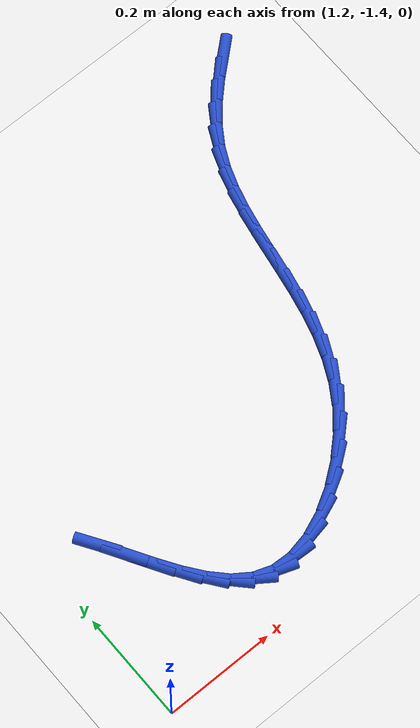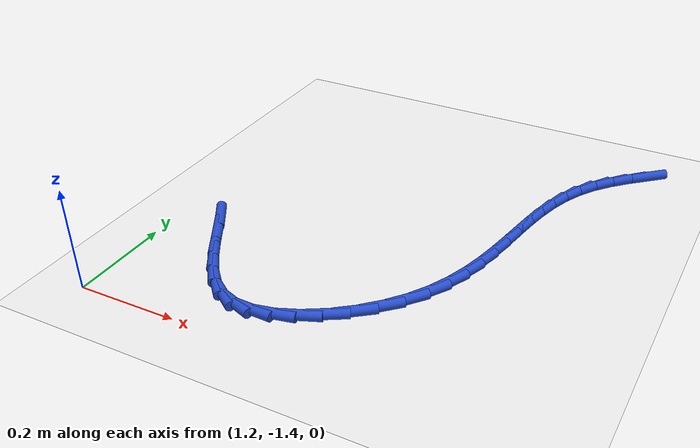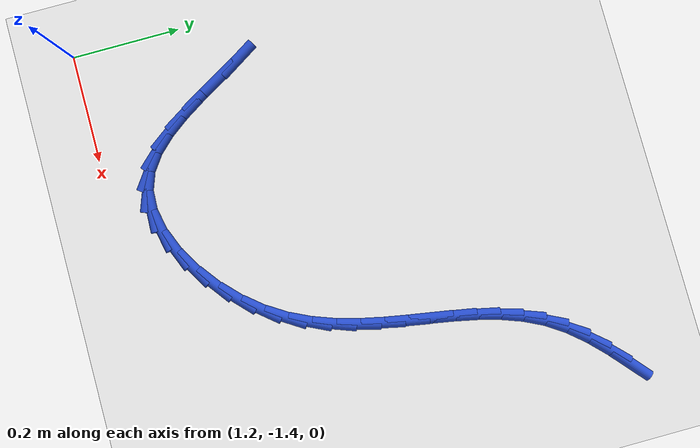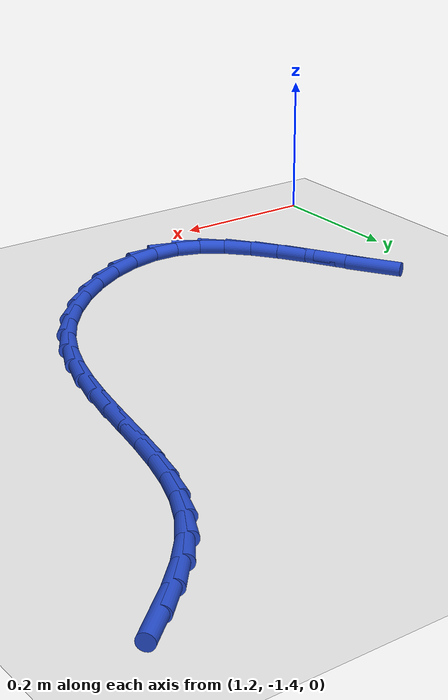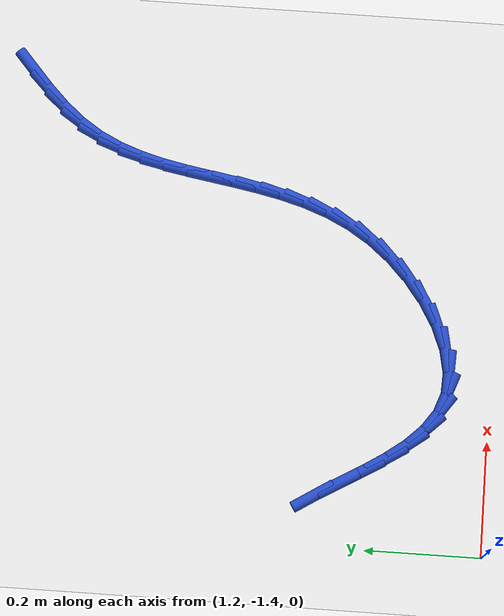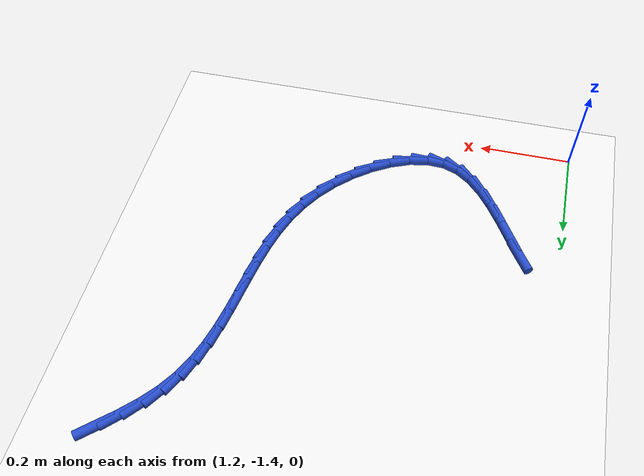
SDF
<sdf version="1.6">
 <world name="default">
  <model name="ground_plane">
   <static>1</static>
   <link name="link">
    <collision name="collision">
     <geometry><plane><normal>0 0 1</normal><size>100 100</size></plane></geometry>
     <surface><friction><ode><mu>100</mu><mu2>50</mu2></ode></friction></surface>
    </collision>
    <visual name="visual">
     <cast_shadows>0</cast_shadows>
     <geometry><plane><normal>0 0 1</normal><size>100 100</size></plane></geometry>
     <material>
      <script><uri>file://media/materials/scripts/gazebo.material</uri><name>Gazebo/WhiteGlow</name></script>
     </material>
    </visual>
   </link>
  </model>
  <model name="line">
   <link name="link_105">
    <pose>2.0023928075887056 -0.5707528001564135 0.01 0 1.57 0.7192359962438325</pose>
    <collision name="collision">
     <geometry><cylinder><radius>0.01</radius><length>0.08</length></cylinder></geometry>
    </collision>
    <visual name="visual">
     <material>
      <script><name>Gazebo/Blue</name><uri>file://media/materials/scripts/gazebo.material</uri></script>
     </material>
     <geometry><cylinder><radius>0.01</radius><length>0.08</length></cylinder></geometry>
    </visual>
   </link>
   <link name="link_106">
    <pose>1.9692844365676598 -0.5997463665667092 0.01 0 1.57 0.7795648812347312</pose>
    <collision name="collision">
     <geometry><cylinder><radius>0.01</radius><length>0.08</length></cylinder></geometry>
    </collision>
    <visual name="visual">
     <material>
      <script><name>Gazebo/Blue</name><uri>file://media/materials/scripts/gazebo.material</uri></script>
     </material>
     <geometry><cylinder><radius>0.01</radius><length>0.08</length></cylinder></geometry>
    </visual>
   </link>
   <link name="link_107">
    <pose>1.9386592362923754 -0.6300163440586429 0.01 0 1.57 0.8679116865161581</pose>
    <collision name="collision">
     <geometry><cylinder><radius>0.01</radius><length>0.08</length></cylinder></geometry>
    </collision>
    <visual name="visual">
     <material>
      <script><name>Gazebo/Blue</name><uri>file://media/materials/scripts/gazebo.material</uri></script>
     </material>
     <geometry><cylinder><radius>0.01</radius><length>0.08</length></cylinder></geometry>
    </visual>
   </link>
   <link name="link_108">
    <pose>1.9115830269978409 -0.6619747965354008 0.01 0 1.57 0.9872611412638304</pose>
    <collision name="collision">
     <geometry><cylinder><radius>0.01</radius><length>0.08</length></cylinder></geometry>
    </collision>
    <visual name="visual">
     <material>
      <script><name>Gazebo/Blue</name><uri>file://media/materials/scripts/gazebo.material</uri></script>
     </material>
     <geometry><cylinder><radius>0.01</radius><length>0.08</length></cylinder></geometry>
    </visual>
   </link>
   <link name="link_109">
    <pose>1.8891012344642248 -0.6960261052319496 0.01 0 1.57 1.1173815300725902</pose>
    <collision name="collision">
     <geometry><cylinder><radius>0.01</radius><length>0.08</length></cylinder></geometry>
    </collision>
    <visual name="visual">
     <material>
      <script><name>Gazebo/Blue</name><uri>file://media/materials/scripts/gazebo.material</uri></script>
     </material>
     <geometry><cylinder><radius>0.01</radius><length>0.08</length></cylinder></geometry>
    </visual>
   </link>
   <link name="link_110">
    <pose>1.8714420927784738 -0.7322668121834918 0.01 0 1.57 1.2261597939343825</pose>
    <collision name="collision">
     <geometry><cylinder><radius>0.01</radius><length>0.08</length></cylinder></geometry>
    </collision>
    <visual name="visual">
     <material>
      <script><name>Gazebo/Blue</name><uri>file://media/materials/scripts/gazebo.material</uri></script>
     </material>
     <geometry><cylinder><radius>0.01</radius><length>0.08</length></cylinder></geometry>
    </visual>
   </link>
   <link name="link_111">
    <pose>1.8577579650983627 -0.7703881747794997 0.01 0 1.57 1.308956149062568</pose>
    <collision name="collision">
     <geometry><cylinder><radius>0.01</radius><length>0.08</length></cylinder></geometry>
    </collision>
    <visual name="visual">
     <material>
      <script><name>Gazebo/Blue</name><uri>file://media/materials/scripts/gazebo.material</uri></script>
     </material>
     <geometry><cylinder><radius>0.01</radius><length>0.08</length></cylinder></geometry>
    </visual>
   </link>
   <link name="link_112">
    <pose>1.8471278545796388 -0.8100538154193856 0.01 0 1.57 1.3658284527395297</pose>
    <collision name="collision">
     <geometry><cylinder><radius>0.01</radius><length>0.08</length></cylinder></geometry>
    </collision>
    <visual name="visual">
     <material>
      <script><name>Gazebo/Blue</name><uri>file://media/materials/scripts/gazebo.material</uri></script>
     </material>
     <geometry><cylinder><radius>0.01</radius><length>0.08</length></cylinder></geometry>
    </visual>
   </link>
   <link name="link_113">
    <pose>1.8386307643780515 -0.8509273565025615 0.01 0 1.57 1.3980229867057052</pose>
    <collision name="collision">
     <geometry><cylinder><radius>0.01</radius><length>0.08</length></cylinder></geometry>
    </collision>
    <visual name="visual">
     <material>
      <script><name>Gazebo/Blue</name><uri>file://media/materials/scripts/gazebo.material</uri></script>
     </material>
     <geometry><cylinder><radius>0.01</radius><length>0.08</length></cylinder></geometry>
    </visual>
   </link>
   <link name="link_114">
    <pose>1.8313456976493463 -0.8926724204284395 0.01 0 1.57 1.4068597642938654</pose>
    <collision name="collision">
     <geometry><cylinder><radius>0.01</radius><length>0.08</length></cylinder></geometry>
    </collision>
    <visual name="visual">
     <material>
      <script><name>Gazebo/Blue</name><uri>file://media/materials/scripts/gazebo.material</uri></script>
     </material>
     <geometry><cylinder><radius>0.01</radius><length>0.08</length></cylinder></geometry>
    </visual>
   </link>
   <link name="link_115">
    <pose>1.8243516575492722 -0.9349526295964332 0.01 0 1.57 1.3932097705591142</pose>
    <collision name="collision">
     <geometry><cylinder><radius>0.01</radius><length>0.08</length></cylinder></geometry>
    </collision>
    <visual name="visual">
     <material>
      <script><name>Gazebo/Blue</name><uri>file://media/materials/scripts/gazebo.material</uri></script>
     </material>
     <geometry><cylinder><radius>0.01</radius><length>0.08</length></cylinder></geometry>
    </visual>
   </link>
   <link name="link_116">
    <pose>1.816727647233577 -0.9774316064059525 0.01 0 1.57 1.3574047977836279</pose>
    <collision name="collision">
     <geometry><cylinder><radius>0.01</radius><length>0.08</length></cylinder></geometry>
    </collision>
    <visual name="visual">
     <material>
      <script><name>Gazebo/Blue</name><uri>file://media/materials/scripts/gazebo.material</uri></script>
     </material>
     <geometry><cylinder><radius>0.01</radius><length>0.08</length></cylinder></geometry>
    </visual>
   </link>
   <link name="link_117">
    <pose>1.8075526698580078 -1.019772973256411 0.01 0 1.57 1.2994700375188377</pose>
    <collision name="collision">
     <geometry><cylinder><radius>0.01</radius><length>0.08</length></cylinder></geometry>
    </collision>
    <visual name="visual">
     <material>
      <script><name>Gazebo/Blue</name><uri>file://media/materials/scripts/gazebo.material</uri></script>
     </material>
     <geometry><cylinder><radius>0.01</radius><length>0.08</length></cylinder></geometry>
    </visual>
   </link>
   <link name="link_118">
    <pose>1.7959057285783124 -1.0616403525472202 0.01 0 1.57 1.2196593700183864</pose>
    <collision name="collision">
     <geometry><cylinder><radius>0.01</radius><length>0.08</length></cylinder></geometry>
    </collision>
    <visual name="visual">
     <material>
      <script><name>Gazebo/Blue</name><uri>file://media/materials/scripts/gazebo.material</uri></script>
     </material>
     <geometry><cylinder><radius>0.01</radius><length>0.08</length></cylinder></geometry>
    </visual>
   </link>
   <link name="link_119">
    <pose>1.7808658265502388 -1.1026973666777928 0.01 0 1.57 1.1192737537658413</pose>
    <collision name="collision">
     <geometry><cylinder><radius>0.01</radius><length>0.08</length></cylinder></geometry>
    </collision>
    <visual name="visual">
     <material>
      <script><name>Gazebo/Blue</name><uri>file://media/materials/scripts/gazebo.material</uri></script>
     </material>
     <geometry><cylinder><radius>0.01</radius><length>0.08</length></cylinder></geometry>
    </visual>
   </link>
   <link name="link_120">
    <pose>1.761511966929534 -1.1426076380475416 0.01 0 1.57 1.0015682662711107</pose>
    <collision name="collision">
     <geometry><cylinder><radius>0.01</radius><length>0.08</length></cylinder></geometry>
    </collision>
    <visual name="visual">
     <material>
      <script><name>Gazebo/Blue</name><uri>file://media/materials/scripts/gazebo.material</uri></script>
     </material>
     <geometry><cylinder><radius>0.01</radius><length>0.08</length></cylinder></geometry>
    </visual>
   </link>
   <link name="link_121">
    <pose>1.7369232182193572 -1.1810347626041995 0.01 0 1.57 0.8770675062409617</pose>
    <collision name="collision">
     <geometry><cylinder><radius>0.01</radius><length>0.08</length></cylinder></geometry>
    </collision>
    <visual name="visual">
     <material>
      <script><name>Gazebo/Blue</name><uri>file://media/materials/scripts/gazebo.material</uri></script>
     </material>
     <geometry><cylinder><radius>0.01</radius><length>0.08</length></cylinder></geometry>
    </visual>
   </link>
   <link name="link_122">
    <pose>1.7066321228896284 -1.2174587766541713 0.01 0 1.57 0.7612847077648415</pose>
    <collision name="collision">
     <geometry><cylinder><radius>0.01</radius><length>0.08</length></cylinder></geometry>
    </collision>
    <visual name="visual">
     <material>
      <script><name>Gazebo/Blue</name><uri>file://media/materials/scripts/gazebo.material</uri></script>
     </material>
     <geometry><cylinder><radius>0.01</radius><length>0.08</length></cylinder></geometry>
    </visual>
   </link>
   <link name="link_123">
    <pose>1.6717085682344797 -1.250737421763222 0.01 0 1.57 0.6474937239027815</pose>
    <collision name="collision">
     <geometry><cylinder><radius>0.01</radius><length>0.08</length></cylinder></geometry>
    </collision>
    <visual name="visual">
     <material>
      <script><name>Gazebo/Blue</name><uri>file://media/materials/scripts/gazebo.material</uri></script>
     </material>
     <geometry><cylinder><radius>0.01</radius><length>0.08</length></cylinder></geometry>
    </visual>
   </link>
   <link name="link_124">
    <pose>1.633547912527804 -1.2795966935961653 0.01 0 1.57 0.5249195380762282</pose>
    <collision name="collision">
     <geometry><cylinder><radius>0.01</radius><length>0.08</length></cylinder></geometry>
    </collision>
    <visual name="visual">
     <material>
      <script><name>Gazebo/Blue</name><uri>file://media/materials/scripts/gazebo.material</uri></script>
     </material>
     <geometry><cylinder><radius>0.01</radius><length>0.08</length></cylinder></geometry>
    </visual>
   </link>
   <link name="link_125">
    <pose>1.5935455140434962 -1.3027625878178157 0.01 0 1.57 0.38091123141777616</pose>
    <collision name="collision">
     <geometry><cylinder><radius>0.01</radius><length>0.08</length></cylinder></geometry>
    </collision>
    <visual name="visual">
     <material>
      <script><name>Gazebo/Blue</name><uri>file://media/materials/scripts/gazebo.material</uri></script>
     </material>
     <geometry><cylinder><radius>0.01</radius><length>0.08</length></cylinder></geometry>
    </visual>
   </link>
   <link name="link_126">
    <pose>1.5530967310554489 -1.3189611000929884 0.01 0 1.57 0.19878671087917416</pose>
    <collision name="collision">
     <geometry><cylinder><radius>0.01</radius><length>0.08</length></cylinder></geometry>
    </collision>
    <visual name="visual">
     <material>
      <script><name>Gazebo/Blue</name><uri>file://media/materials/scripts/gazebo.material</uri></script>
     </material>
     <geometry><cylinder><radius>0.01</radius><length>0.08</length></cylinder></geometry>
    </visual>
   </link>
   <link name="link_127">
    <pose>1.5135969218375573 -1.326918226086497 0.01 0 1.57 -0.041914466008053555</pose>
    <collision name="collision">
     <geometry><cylinder><radius>0.01</radius><length>0.08</length></cylinder></geometry>
    </collision>
    <visual name="visual">
     <material>
      <script><name>Gazebo/Blue</name><uri>file://media/materials/scripts/gazebo.material</uri></script>
     </material>
     <geometry><cylinder><radius>0.01</radius><length>0.08</length></cylinder></geometry>
    </visual>
   </link>
   <link name="link_128">
    <pose>1.4764414446637153 -1.325359961463156 0.01 0 1.57 -0.342874046964436</pose>
    <collision name="collision">
     <geometry><cylinder><radius>0.01</radius><length>0.08</length></cylinder></geometry>
    </collision>
    <visual name="visual">
     <material>
      <script><name>Gazebo/Blue</name><uri>file://media/materials/scripts/gazebo.material</uri></script>
     </material>
     <geometry><cylinder><radius>0.01</radius><length>0.08</length></cylinder></geometry>
    </visual>
   </link>
   <link name="link_129">
    <pose>1.442797215338717 -1.3133498512672759 0.01 0 1.57 -0.6141554056616323</pose>
    <collision name="collision">
     <geometry><cylinder><radius>0.01</radius><length>0.08</length></cylinder></geometry>
    </collision>
    <visual name="visual">
     <material>
      <script><name>Gazebo/Blue</name><uri>file://media/materials/scripts/gazebo.material</uri></script>
     </material>
     <geometry><cylinder><radius>0.01</radius><length>0.08</length></cylinder></geometry>
    </visual>
   </link>
   <link name="link_130">
    <pose>1.4124687322982101 -1.2919645650702571 0.01 0 1.57 -0.8070956462784024</pose>
    <collision name="collision">
     <geometry><cylinder><radius>0.01</radius><length>0.08</length></cylinder></geometry>
    </collision>
    <visual name="visual">
     <material>
      <script><name>Gazebo/Blue</name><uri>file://media/materials/scripts/gazebo.material</uri></script>
     </material>
     <geometry><cylinder><radius>0.01</radius><length>0.08</length></cylinder></geometry>
    </visual>
   </link>
   <link name="link_131">
    <pose>1.3847575259361153 -1.2630239641585062 0.01 0 1.57 -0.9312373732680492</pose>
    <collision name="collision">
     <geometry><cylinder><radius>0.01</radius><length>0.08</length></cylinder></geometry>
    </collision>
    <visual name="visual">
     <material>
      <script><name>Gazebo/Blue</name><uri>file://media/materials/scripts/gazebo.material</uri></script>
     </material>
     <geometry><cylinder><radius>0.01</radius><length>0.08</length></cylinder></geometry>
    </visual>
   </link>
   <link name="link_132">
    <pose>1.3589643268994018 -1.2283490915342932 0.01 0 1.57 -1.0037278542238008</pose>
    <collision name="collision">
     <geometry><cylinder><radius>0.01</radius><length>0.08</length></cylinder></geometry>
    </collision>
    <visual name="visual">
     <material>
      <script><name>Gazebo/Blue</name><uri>file://media/materials/scripts/gazebo.material</uri></script>
     </material>
     <geometry><cylinder><radius>0.01</radius><length>0.08</length></cylinder></geometry>
    </visual>
   </link>
   <link name="link_133">
    <pose>1.3343898658350362 -1.1897609901998856 0.01 0 1.57 -1.0367849903981399</pose>
    <collision name="collision">
     <geometry><cylinder><radius>0.01</radius><length>0.08</length></cylinder></geometry>
    </collision>
    <visual name="visual">
     <material>
      <script><name>Gazebo/Blue</name><uri>file://media/materials/scripts/gazebo.material</uri></script>
     </material>
     <geometry><cylinder><radius>0.01</radius><length>0.08</length></cylinder></geometry>
    </visual>
   </link>
   <link name="link_134">
    <pose>1.3103348733899844 -1.149080703157551 0.01 0 1.57 -1.0364328113615386</pose>
    <collision name="collision">
     <geometry><cylinder><radius>0.01</radius><length>0.08</length></cylinder></geometry>
    </collision>
    <visual name="visual">
     <material>
      <script><name>Gazebo/Blue</name><uri>file://media/materials/scripts/gazebo.material</uri></script>
     </material>
     <geometry><cylinder><radius>0.01</radius><length>0.08</length></cylinder></geometry>
    </visual>
   </link>
   <link name="link_135">
    <pose>1.2861000802112141 -1.1081292734095567 0.01 0 1.57 -1.0033419293179164</pose>
    <collision name="collision">
     <geometry><cylinder><radius>0.01</radius><length>0.08</length></cylinder></geometry>
    </collision>
    <visual name="visual">
     <material>
      <script><name>Gazebo/Blue</name><uri>file://media/materials/scripts/gazebo.material</uri></script>
     </material>
     <geometry><cylinder><radius>0.01</radius><length>0.08</length></cylinder></geometry>
    </visual>
   </link>
  </model>
 </world>
</sdf>
